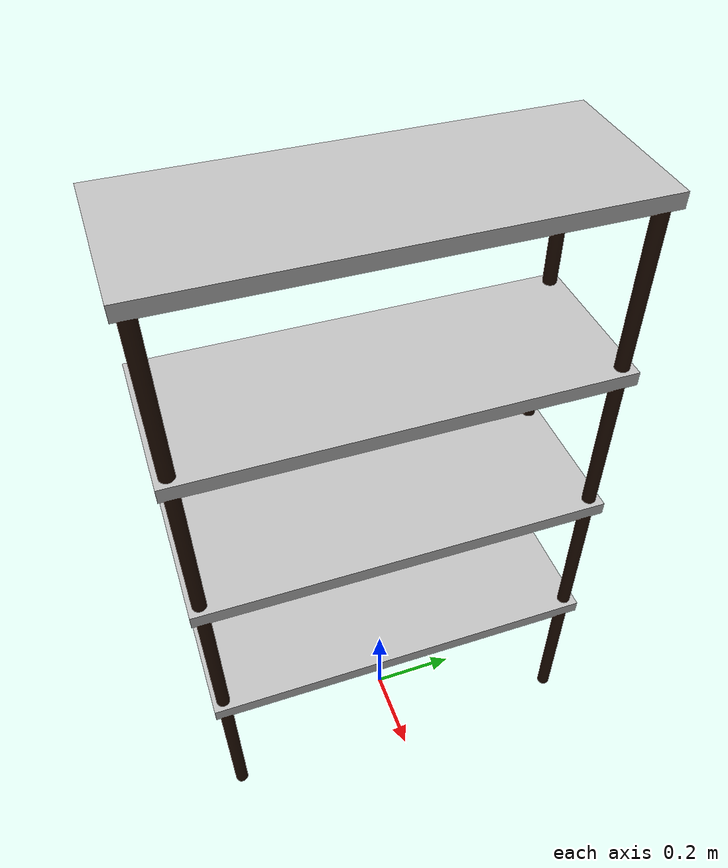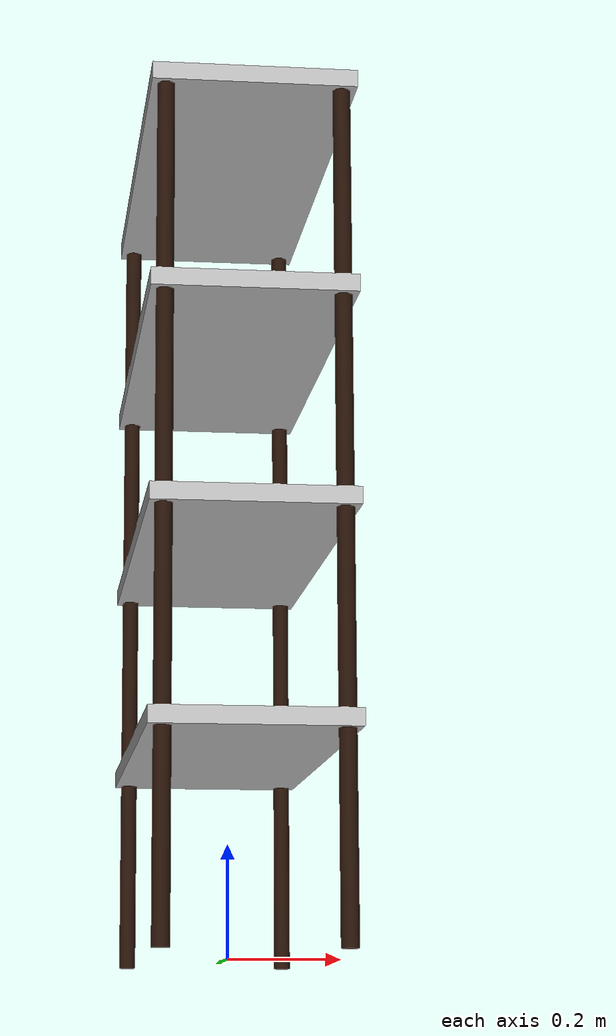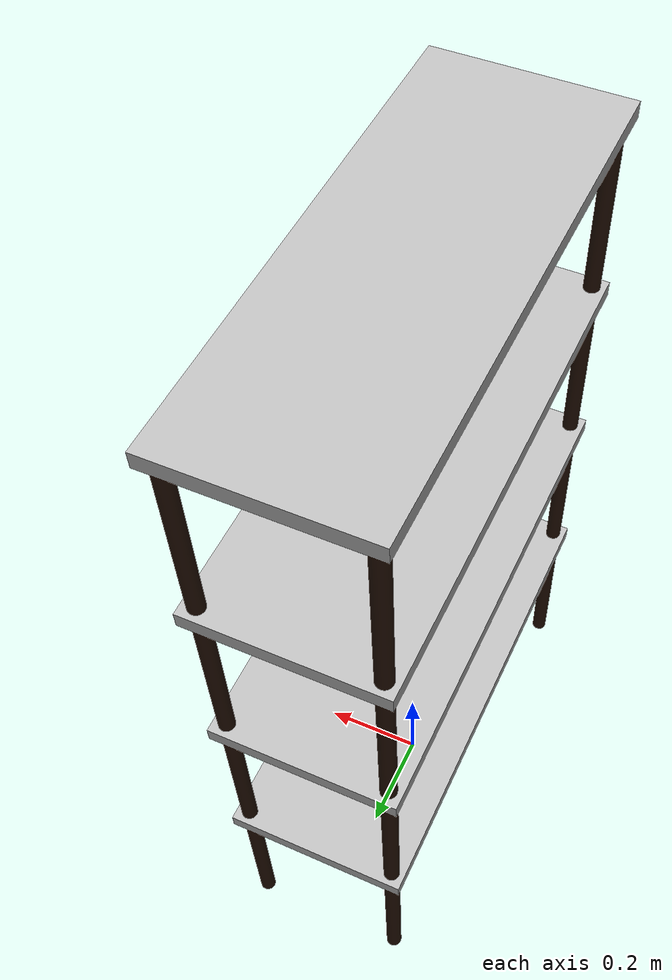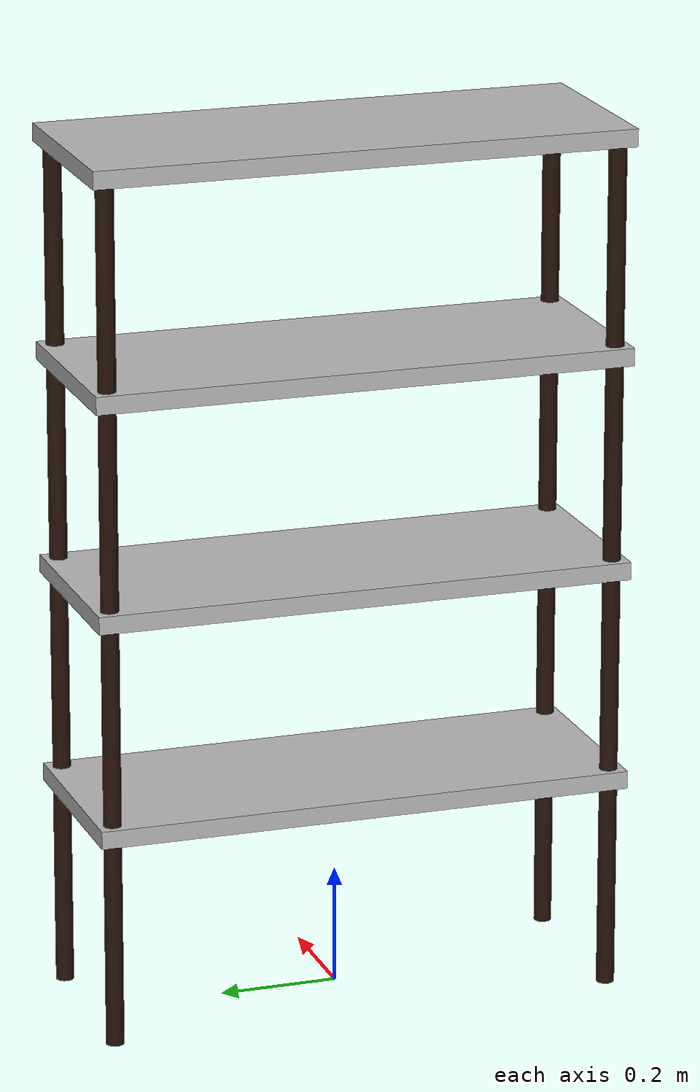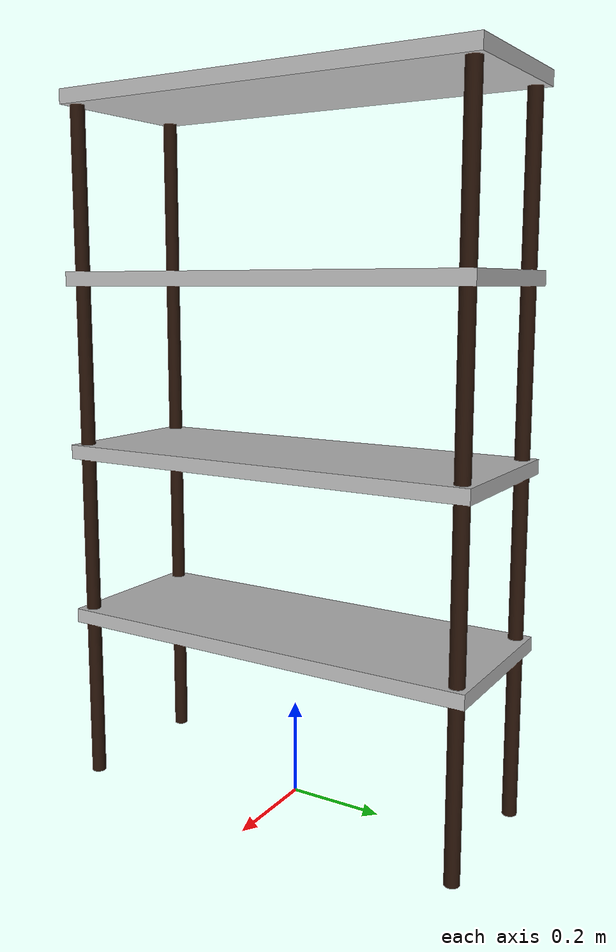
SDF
<?xml version="1.0" ?>
<sdf version="1.5">
  <model name="rack">
    <static>true</static>
    <link name="rack_link">
      <collision name="collision">
        <geometry>
          <box>
            <size>1 1 1 </size>
          </box>
        </geometry>
      </collision>
      <visual name="rack_mesh">
      <cast_shadows>true</cast_shadows>
        <geometry>
          <mesh>
            <uri>model://rack/meshes/rack.dae</uri>
          </mesh>
        </geometry>
      </visual>
    </link>
  </model>
</sdf>
